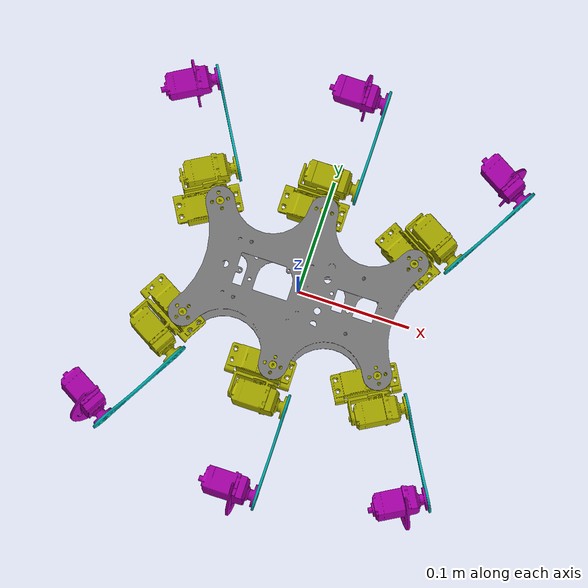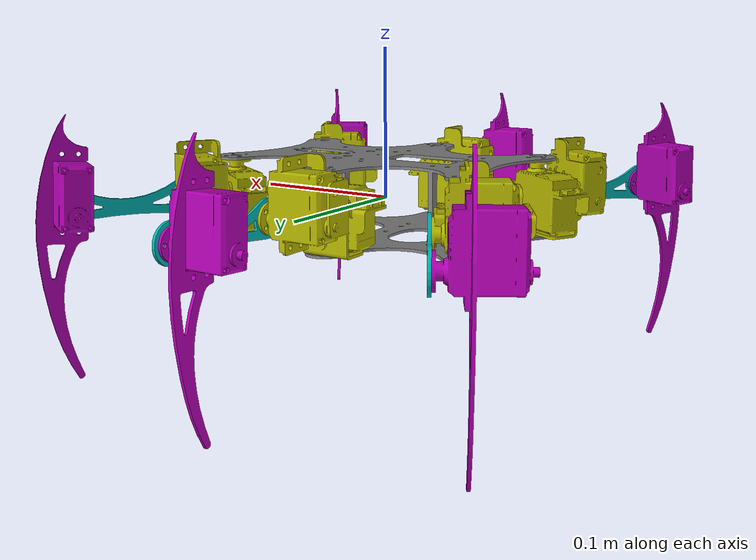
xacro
<?xml version="1.0"?>
<robot xmlns:xacro="http://ros.org/wiki/xacro" name="crab">

<!-- Build the body frame -->
	<link name="base_link" />

	<joint name="base_joint" type="fixed">
		<parent link="base_link" />
		<child link="thorax" />
		<origin xyz="0 0 0" rpy="0 0 0" />
	</joint>

	<link name="thorax">
    		<visual>
      			<origin	xyz="0 0 0" rpy="0 0 0" />
      			<geometry>
				<mesh filename="file:///home/rikako/hexapod-walker/src/hexazod_description/meshes/thorax.STL" />
      			</geometry>rikako/hexapod-walker
     			<material name="grey">
        			<color rgba="0.5 0.5 0.5 1" />
      			</material>
    		</visual>
	</link>

<!-- Pi parameter -->
	<xacro:property name="pi" value="3.1415926535897931" />

<!-- Joint properties -->
	<xacro:property name="joint_lower_limit" value="-${1.5}" />
	<xacro:property name="joint_upper_limit" value="${1.5}" />
	<xacro:property name="joint_effort" value="10000" />
	<xacro:property name="joint_velocity" value="100" />

<!-- Leg macros -->
	<xacro:macro name="leg" params="side num x y angle">

<!-- Build leg -->
  	<joint name="leg_center_joint_${side}${num}" type="fixed">
    		<origin xyz="${x} ${y} 0" rpy="0 0 0" />
    		<parent link="thorax" />
    		<child link="leg_center_${side}${num}" />
  	</joint>

    	<link name="leg_center_${side}${num}" />

	<joint name="coxa_joint_${side}${num}" type="revolute">
    		<origin xyz="0 0 0" rpy="0 0 ${angle}" />
    		<parent link="leg_center_${side}${num}" />
    		<child link="coxa_${side}${num}" />
    		<axis xyz="0 0 -1" />
    		<limit lower="${joint_lower_limit}" upper="${joint_upper_limit}" effort="${joint_effort}" velocity="${joint_velocity}" />
  	</joint>

  	<link name="coxa_${side}${num}">
    		<visual>
      			<origin xyz="0 0 0" rpy="0 0 0" />
      			<geometry>
        			<mesh filename="file:///home/rikako/hexapod-walker/src/hexazod_description/meshes/coxa_${side}.STL" />
      			</geometry>
      			<material name="">
        			<color rgba="0.7 0.7 0 1" />
      			</material>
    		</visual>
  	</link>

  	<joint name="femur_joint_${side}${num}" type="revolute">
    		<origin xyz="0.0294 0 0" rpy="-${pi/2} 0 0" />
    		<parent link="coxa_${side}${num}" />
    		<child link="femur_${side}${num}" />
    		<axis xyz="0 0 -1" />
    		<limit lower="${joint_lower_limit}" upper="${joint_upper_limit}" effort="${joint_effort}" velocity="${joint_velocity}" />
  	</joint>

  	<link name="femur_${side}${num}">
    		<visual>
      			<origin xyz="0 0 0" rpy="0 0 0" />
      			<geometry>
        			<mesh filename="file:///home/rikako/hexapod-walker/src/hexazod_description/meshes/femur_${side}.STL" />
      			</geometry>
      			<material name="">
        			<color rgba="0 0.7 0.7 1" />
      			</material>
    		</visual>
  	</link>

  	<joint name="tibia_joint_${side}${num}" type="revolute">
    		<origin xyz="0.08 0 0" rpy="${pi} 0 ${pi/2}" />
    		<parent link="femur_${side}${num}" />
    		<child link="tibia_${side}${num}" />
    		<axis xyz="0 0 1" />
    		<limit lower="${joint_lower_limit}" upper="${joint_upper_limit}" effort="${joint_effort}" velocity="${joint_velocity}" />
  	</joint>

  	<link name="tibia_${side}${num}">
    		<visual>
      			<origin xyz="0 0 0" rpy="0 0 0.06" />
      			<geometry>
       				<mesh filename="file:///home/rikako/hexapod-walker/src/hexazod_description/meshes/tibia_${side}.STL" />
      			</geometry>
      			<material name="">
        			<color rgba="0.7 0 0.7 1" />
      			</material>
    		</visual>
  	</link>

  	<joint name="tibia_foot_joint_${side}${num}" type="fixed">
    		<origin xyz="0.117 0 0" rpy="0 0 0" />
    		<parent link="tibia_${side}${num}" />
    		<child link="tibia_foot_${side}${num}" />
  	</joint>

  	<link name="tibia_foot_${side}${num}" />
	</xacro:macro>

<!-- Build robot model -->
	<xacro:leg side="r" num="1" x="0.087598" 	y="-0.050575" 	angle="-${pi/3}" />
	<xacro:leg side="r" num="2" x="0" 		y="-0.06985" 	angle="-${pi/2}" />
	<xacro:leg side="r" num="3" x="-0.087598" 	y="-0.050575" 	angle="-${pi*2/3}" />
	<xacro:leg side="l" num="1" x="0.087598" 	y="0.050575"	angle="${pi/3}" />
	<xacro:leg side="l" num="2" x="0" 		y="0.06985"	angle="${pi/2}" />
	<xacro:leg side="l" num="3" x="-0.087598" 	y="0.050575" 	angle="${pi*2/3}" />

</robot>
